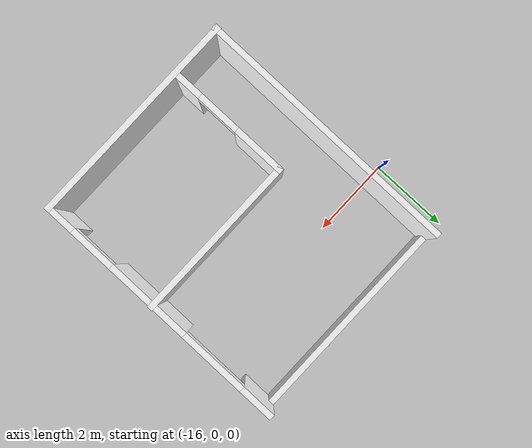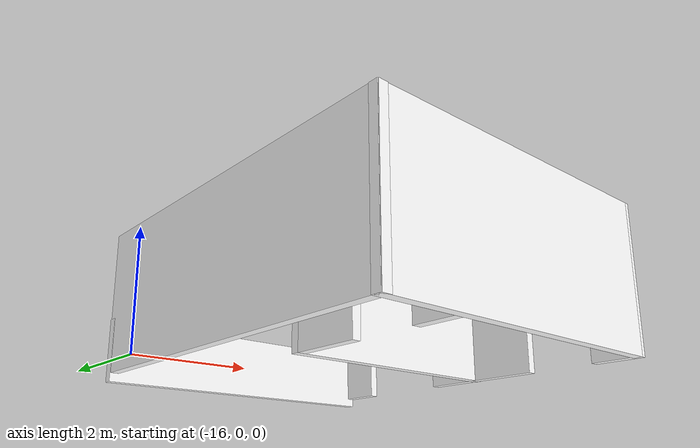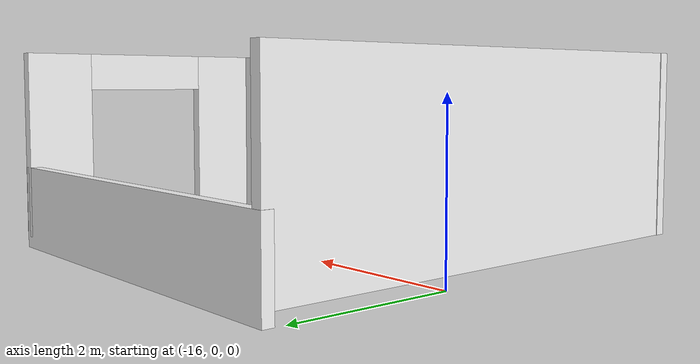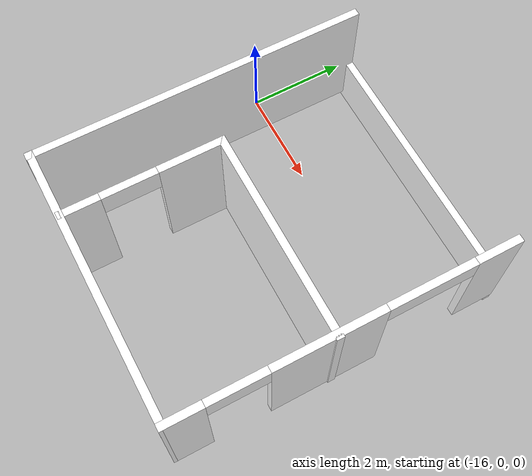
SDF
<?xml version='1.0'?>
<sdf version='1.6'>
  <model name='cssd_room'>
    <pose frame=''>-7.77555 -1.45787 0 0 -0 0</pose>
    <link name='Wall_0'>
      <pose frame=''>-2.28555 0.005002 0 0 -0 1.56929</pose>
      <visual name='Wall_0_Visual_0'>
        <pose frame=''>-2.98955 0 1.25 0 -0 0</pose>
        <geometry>
          <box>
            <size>0.800907 0.15 2.5</size>
          </box>
        </geometry>
        <material>
          <script>
            <uri>model://cssd_room/materials/scripts/SimpleWall.material</uri>
            <name>SimpleWall</name>
          </script>
          <ambient>1 1 1 1</ambient>
        </material>
        <meta>
          <layer>0</layer>
        </meta>
      </visual>
      <collision name='Wall_0_Collision_0'>
        <geometry>
          <box>
            <size>0.800907 0.15 2.5</size>
          </box>
        </geometry>
        <pose frame=''>-2.98955 0 1.25 0 -0 0</pose>
      </collision>
      <visual name='Wall_0_Visual_1'>
        <pose frame=''>-0.333364 0 1.25 0 -0 0</pose>
        <geometry>
          <box>
            <size>2.19146 0.15 2.5</size>
          </box>
        </geometry>
        <material>
          <script>
            <uri>model://cssd_room/materials/scripts/SimpleWall.material</uri>
            <name>SimpleWall</name>
            </script>
          <ambient>1 1 1 1</ambient>
        </material>
        <meta>
          <layer>0</layer>
        </meta>
      </visual>
      <collision name='Wall_0_Collision_1'>
        <geometry>
          <box>
            <size>2.19146 0.15 2.5</size>
          </box>
        </geometry>
        <pose frame=''>-0.333364 0 1.25 0 -0 0</pose>
      </collision>
      <visual name='Wall_0_Visual_2'>
        <pose frame=''>2.94118 0 1.25 0 -0 0</pose>
        <geometry>
          <box>
            <size>0.897634 0.15 2.5</size>
          </box>
        </geometry>
        <material>
          <script>
            <uri>model://cssd_room/materials/scripts/SimpleWall.material</uri>
            <name>SimpleWall</name>
          </script>
          <ambient>1 1 1 1</ambient>
        </material>
        <meta>
          <layer>0</layer>
        </meta>
      </visual>
      <collision name='Wall_0_Collision_2'>
        <geometry>
          <box>
            <size>0.897634 0.15 2.5</size>
          </box>
        </geometry>
        <pose frame=''>2.94118 0 1.25 0 -0 0</pose>
      </collision>
      <visual name='Wall_0_Visual_3'>
        <pose frame=''>-2.00909 0 2.25 0 -0 0</pose>
        <geometry>
          <box>
            <size>1.16 0.15 0.5</size>
          </box>
        </geometry>
        <material>
          <script>
            <uri>model://cssd_room/materials/scripts/SimpleWall.material</uri>
            <name>SimpleWall</name>
          </script>
          <ambient>1 1 1 1</ambient>
        </material>
        <meta>
          <layer>0</layer>
        </meta>
      </visual>
      <collision name='Wall_0_Collision_3'>
        <geometry>
          <box>
            <size>1.16 0.15 0.5</size>
          </box>
        </geometry>
        <pose frame=''>-2.00909 0 2.25 0 -0 0</pose>
      </collision>
      <visual name='Wall_0_Visual_4'>
        <pose frame=''>1.62737 0 2.25 0 -0 0</pose>
        <geometry>
          <box>
            <size>1.73 0.15 0.5</size>
          </box>
        </geometry>
        <material>
          <script>
            <uri>model://cssd_room/materials/scripts/SimpleWall.material</uri>
            <name>SimpleWall</name>
          </script>
          <ambient>1 1 1 1</ambient>
        </material>
        <meta>
          <layer>0</layer>
        </meta>
      </visual>
      <collision name='Wall_0_Collision_4'>
        <geometry>
          <box>
            <size>1.73 0.15 0.5</size>
          </box>
        </geometry>
        <pose frame=''>1.62737 0 2.25 0 -0 0</pose>
      </collision>
    </link>
    <link name='Wall_1'>
      <collision name='Wall_1_Collision'>
        <geometry>
          <box>
            <size>5.55 0.15 1.1</size>
          </box>
        </geometry>
        <pose frame=''>0 0 0.4 0 -0 0</pose>
      </collision>
      <visual name='Wall_1_Visual'>
        <pose frame=''>0 0 0.4 0 -0 0</pose>
        <geometry>
          <box>
            <size>5.55 0.15 1.1</size>
          </box>
        </geometry>
        <material>
          <script>
            <uri>model://cssd_room/materials/scripts/SimpleWall.material</uri>
            <name>SimpleWall</name>
          </script>
          <ambient>1 1 1 1</ambient>
        </material>
        <meta>
          <layer>0</layer>
        </meta>
      </visual>
      <pose frame=''>-4.99055 3.32 0 0 -0 3.14159</pose>
    </link>
    <link name='Wall_2'>
      <collision name='Wall_2_Collision'>
        <geometry>
          <box>
            <size>6.78001 0.15 2.5</size>
          </box>
        </geometry>
        <pose frame=''>0 0 1.25 0 -0 0</pose>
      </collision>
      <visual name='Wall_2_Visual'>
        <pose frame=''>0 0 1.25 0 -0 0</pose>
        <geometry>
          <box>
            <size>6.78001 0.15 2.5</size>
          </box>
        </geometry>
        <material>
          <script>
            <uri>model://cssd_room/materials/scripts/SimpleWall.material</uri>
            <name>SimpleWall</name>
          </script>
          <ambient>1 1 1 1</ambient>
        </material>
        <meta>
          <layer>0</layer>
        </meta>
      </visual>
      <pose frame=''>-7.68555 -0.004998 0 0 -0 -1.57231</pose>
    </link>
    <link name='Wall_3'>
      <collision name='Wall_3_Collision'>
        <geometry>
          <box>
            <size>5.56 0.15 2.5</size>
          </box>
        </geometry>
        <pose frame=''>0 0 1.25 0 -0 0</pose>
      </collision>
      <visual name='Wall_3_Visual'>
        <pose frame=''>0 0 1.25 0 -0 0</pose>
        <geometry>
          <box>
            <size>5.56 0.15 2.5</size>
          </box>
        </geometry>
        <material>
          <script>
            <uri>model://cssd_room/materials/scripts/SimpleWall.material</uri>
            <name>SimpleWall</name>
          </script>
          <ambient>1 1 1 1</ambient>
        </material>
        <meta>
          <layer>0</layer>
        </meta>
      </visual>
      <pose frame=''>-4.99555 -3.31 0 0 -0 0</pose>
    </link>
    <link name='Wall_4'>
      <collision name='Wall_4_Collision'>
        <geometry>
          <box>
            <size>4.25 0.15 2.5</size>
          </box>
        </geometry>
        <pose frame=''>0 0 1.25 0 -0 0</pose>
      </collision>
      <visual name='Wall_4_Visual'>
        <pose frame=''>0 0 1.25 0 -0 0</pose>
        <geometry>
          <box>
            <size>4.25 0.15 2.5</size>
          </box>
        </geometry>
        <material>
          <script>
            <uri>model://cssd_room/materials/scripts/SimpleWall.material</uri>
            <name>SimpleWall</name>
          </script>
          <ambient>1 1 1 1</ambient>
        </material>
        <meta>
          <layer>0</layer>
        </meta>
      </visual>
      <pose frame=''>-4.31055 -0.179998 0 0 -0 3.14159</pose>
    </link>
    <link name='Wall_5'>
      <pose frame=''>-6.36055 -1.73 0 0 -0 -1.5708</pose>
      <visual name='Wall_5_Visual_0'>
        <pose frame=''>-0.95 0 1.25 0 -0 0</pose>
        <geometry>
          <box>
            <size>1.35 0.15 2.5</size>
          </box>
        </geometry>
        <material>
          <script>
            <uri>model://cssd_room/materials/scripts/SimpleWall.material</uri>
            <name>SimpleWall</name>
          </script>
          <ambient>1 1 1 1</ambient>
        </material>
        <meta>
          <layer>0</layer>
        </meta>
      </visual>
      <collision name='Wall_5_Collision_0'>
        <geometry>
          <box>
            <size>1.35 0.15 2.5</size>
          </box>
        </geometry>
        <pose frame=''>-0.95 0 1.25 0 -0 0</pose>
      </collision>
      <visual name='Wall_5_Visual_1'>
        <pose frame=''>1.225 0 1.25 0 -0 0</pose>
        <geometry>
          <box>
            <size>0.8 0.15 2.5</size>
          </box>
        </geometry>
        <material>
          <script>
            <uri>model://cssd_room/materials/scripts/SimpleWall.material</uri>
            <name>SimpleWall</name>
          </script>
          <ambient>1 1 1 1</ambient>
        </material>
        <meta>
          <layer>0</layer>
        </meta>
      </visual>
      <collision name='Wall_5_Collision_1'>
        <geometry>
          <box>
            <size>0.8 0.15 2.5</size>
          </box>
        </geometry>
        <pose frame=''>1.225 0 1.25 0 -0 0</pose>
      </collision>
      <visual name='Wall_5_Visual_2'>
        <pose frame=''>0.275 0 2.25 0 -0 0</pose>
        <geometry>
          <box>
            <size>1.1 0.15 0.5</size>
          </box>
        </geometry>
        <material>
          <script>
            <uri>model://cssd_room/materials/scripts/SimpleWall.material</uri>
            <name>SimpleWall</name>
          </script>
          <ambient>1 1 1 1</ambient>
        </material>
        <meta>
          <layer>0</layer>
        </meta>
      </visual>
      <collision name='Wall_5_Collision_2'>
        <geometry>
          <box>
            <size>1.1 0.15 0.5</size>
          </box>
        </geometry>
        <pose frame=''>0.275 0 2.25 0 -0 0</pose>
      </collision>
    </link>
    <static>1</static>
  </model>
</sdf>
